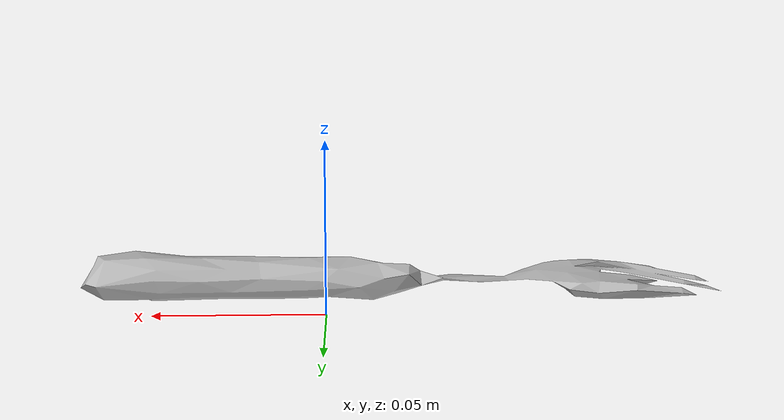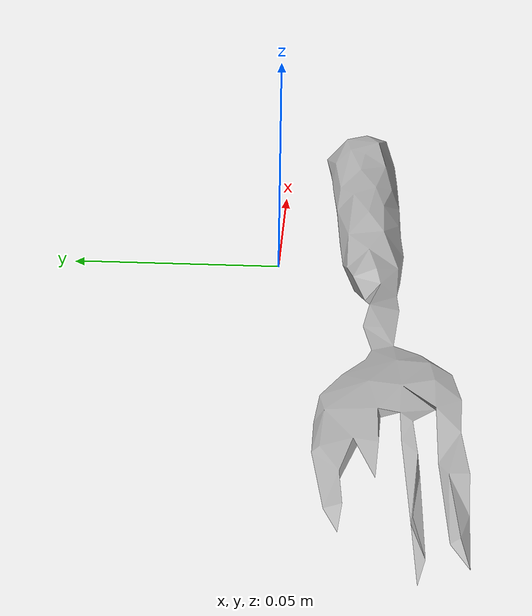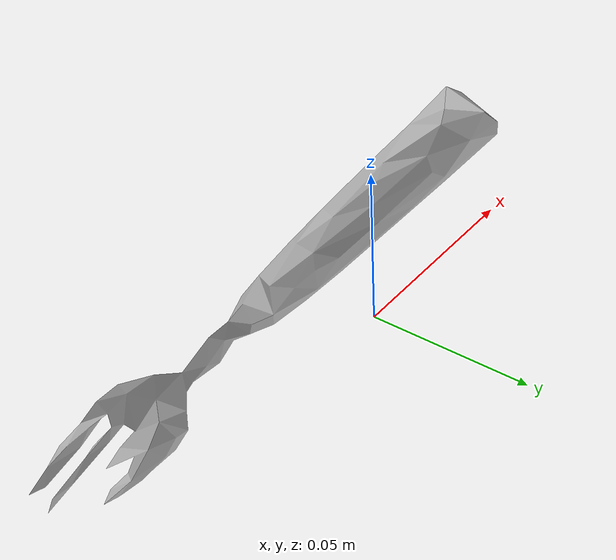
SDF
<?xml version='1.0'?>
<sdf version="1.4">
  <model name="030_fork">
    <static>false</static>
    <link name="link">
      <inertial>
        <pose>-0.019774018832066784 -0.02201816718287354 0.005918856998206432 -1.7624771802391617 -1.45216793932628 1.771498794441468</pose>
        <mass>0.004280300637711533</mass>
        <inertia>
          <ixx>1.1694237452024586e-05</ixx>
          <ixy>7.149304389743474e-22</ixy>
          <ixz>2.1801779352242813e-23</ixz>
          <iyy>1.1584592764178206e-05</iyy>
          <iyz>-1.4770905526565284e-22</iyz>
          <izz>1.986294468011506e-07</izz>
        </inertia>
      </inertial>
      <collision name="collision">
        <geometry>
          <mesh>
            <!-- Use a downsampled mesh for collisions -->
            <uri>model:///030_fork/030_fork_250_collision.stl</uri>
	        </mesh>
        </geometry>
        <surface>
      </surface>
      </collision>
      <visual name="visual">
        <geometry>
          <mesh>
            <uri>model:///030_fork/textured.obj</uri>
	        </mesh>
        </geometry>
        <material>
          <script>
            <uri>model:///030_fork/030_fork.material</uri>
            <name>030_fork</name>
          </script>
        </material>
      </visual>
    </link>
  </model>
</sdf>
